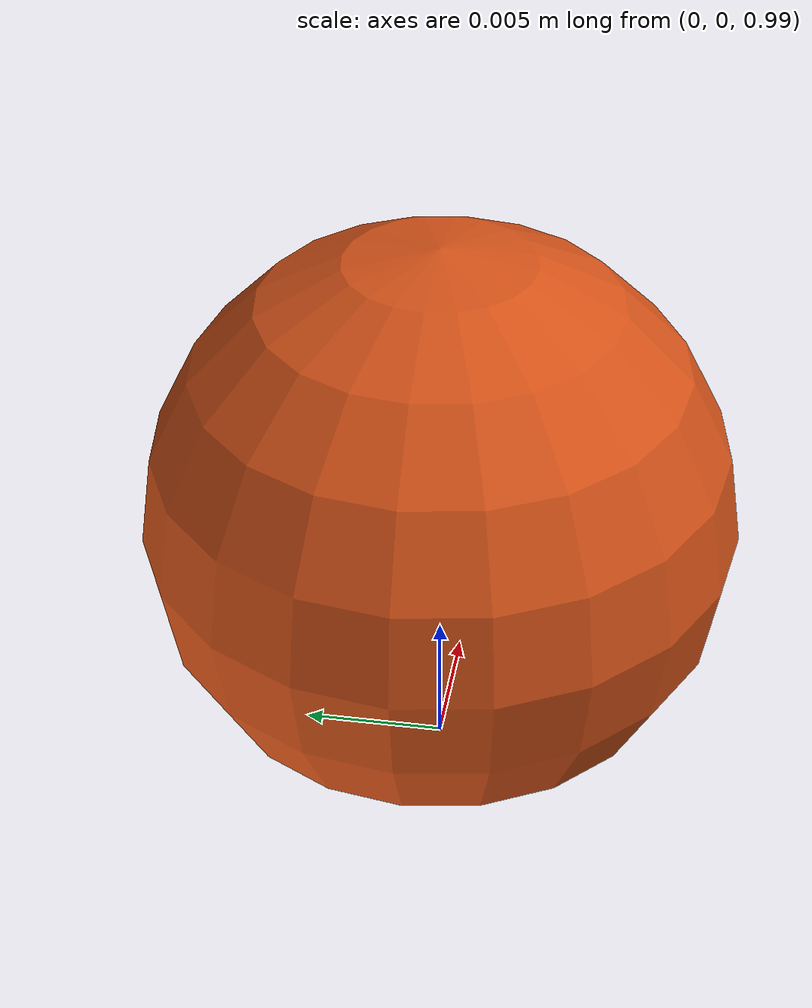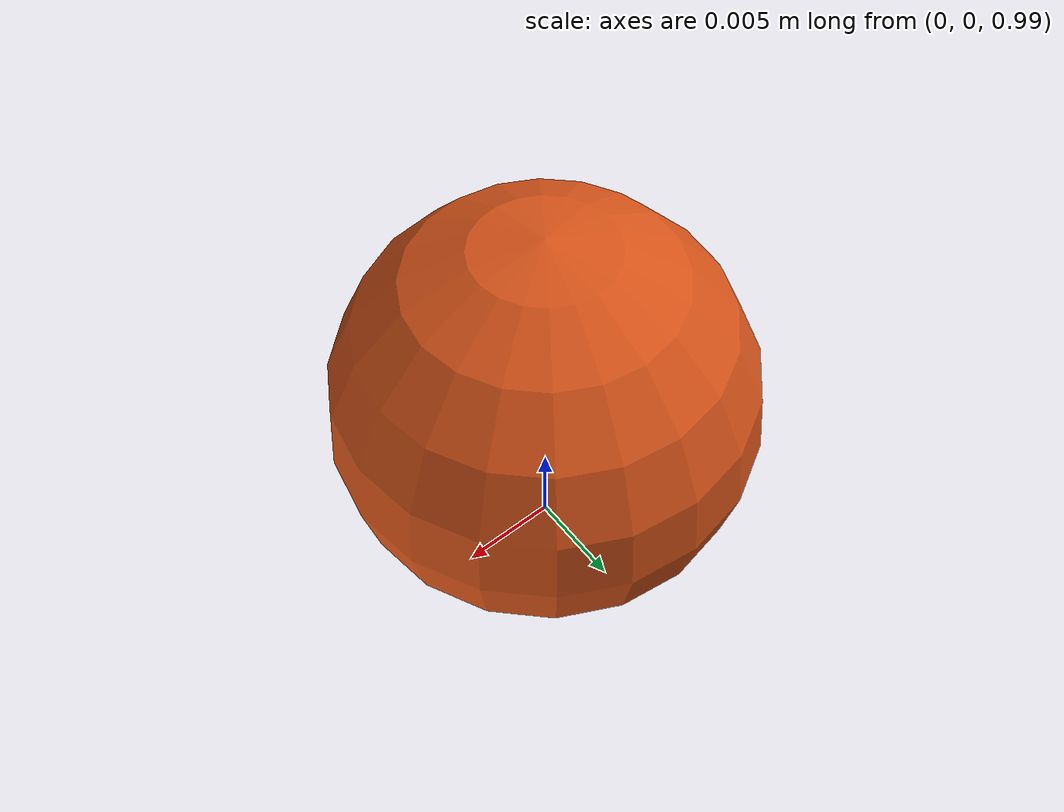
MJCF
<!-- BROKEN (debugging clinic, case 7): a fast ball passes straight through a thin shelf. -->
<mujoco model="tunneling">
  <compiler angle="radian" autolimits="true"/>
  <option timestep="0.01"/>
  <worldbody>
    <light pos="0 -1 2" dir="0 0.5 -1"/>
    <geom name="floor" type="plane" size="1 1 0.05" rgba=".86 .88 .86 1"/>
    <geom name="shelf" type="box" pos="0 0 0.5" size="0.3 0.3 0.003" rgba=".55 .45 .35 1"/>
    <body name="ball" pos="0 0 1.0">
      <freejoint/>
      <geom name="ball" type="sphere" size="0.01" mass="0.02" rgba=".85 .33 .1 1"/>
    </body>
  </worldbody>
  <keyframe><key qvel="0 0 -8 0 0 0"/></keyframe>
</mujoco>
